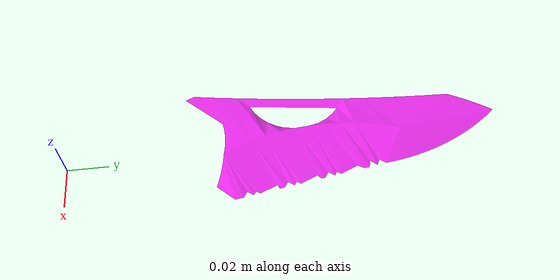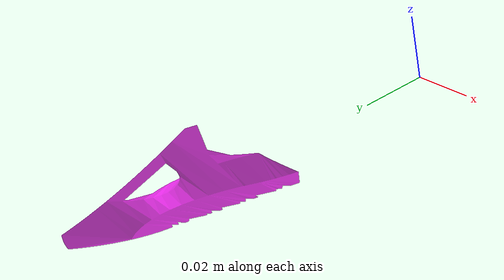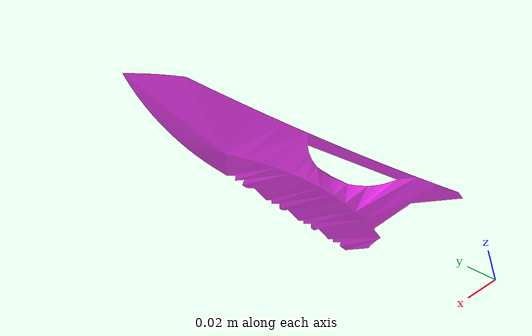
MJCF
<mujoco model="bottom_watertight_tiny">
  <default>
    <default group="2" type="mesh" contype="0" conaffinity="0">
      <geom group="2" type="mesh" contype="0" conaffinity="0"/>
    </default>
    <default group="3" type="mesh">
      <geom group="3" type="mesh"/>
    </default>
  </default>
  <asset>
    <mesh file="bottom_watertight_tiny.obj"/>
    <mesh file="bottom_watertight_tiny_collision_0.obj"/>
    <mesh file="bottom_watertight_tiny_collision_1.obj"/>
    <mesh file="bottom_watertight_tiny_collision_2.obj"/>
    <mesh file="bottom_watertight_tiny_collision_3.obj"/>
    <mesh file="bottom_watertight_tiny_collision_4.obj"/>
    <mesh file="bottom_watertight_tiny_collision_5.obj"/>
    <mesh file="bottom_watertight_tiny_collision_6.obj"/>
    <mesh file="bottom_watertight_tiny_collision_7.obj"/>
    <mesh file="bottom_watertight_tiny_collision_8.obj"/>
    <mesh file="bottom_watertight_tiny_collision_9.obj"/>
    <mesh file="bottom_watertight_tiny_collision_10.obj"/>
    <mesh file="bottom_watertight_tiny_collision_11.obj"/>
    <mesh file="bottom_watertight_tiny_collision_12.obj"/>
    <mesh file="bottom_watertight_tiny_collision_13.obj"/>
    <mesh file="bottom_watertight_tiny_collision_14.obj"/>
  </asset>
  <worldbody>
    <body name="bottom_watertight_tiny">
      <freejoint/>
      <geom mesh="bottom_watertight_tiny" group="2" type="mesh" rgba="1 0 1 0.8" contype="0" conaffinity="0"/>
      <geom mesh="bottom_watertight_tiny_collision_0" rgba="0.888437205607165 0.4998191124188115 0.47445755367718423 1" group="3" type="mesh"/>
      <geom mesh="bottom_watertight_tiny_collision_1" rgba="0.8204052623556178 0.18534061359219245 0.2791891320731278 1" group="3" type="mesh"/>
      <geom mesh="bottom_watertight_tiny_collision_2" rgba="0.21842837581634655 0.7998752610483 0.550659319386601 1" group="3" type="mesh"/>
      <geom mesh="bottom_watertight_tiny_collision_3" rgba="0.870415187440498 0.8416797116082836 0.5662949877119079 1" group="3" type="mesh"/>
      <geom mesh="bottom_watertight_tiny_collision_4" rgba="0.7106652178081031 0.3649835526765157 0.44987135212303053 1" group="3" type="mesh"/>
      <geom mesh="bottom_watertight_tiny_collision_5" rgba="0.9634128746920979 0.4306670595336519 0.6101008134685096 1" group="3" type="mesh"/>
      <geom mesh="bottom_watertight_tiny_collision_6" rgba="0.2926633751505745 0.2904356464568534 0.6796285660791822 1" group="3" type="mesh"/>
      <geom mesh="bottom_watertight_tiny_collision_7" rgba="0.35816792947467624 0.697361240582855 0.7236638209362918 1" group="3" type="mesh"/>
      <geom mesh="bottom_watertight_tiny_collision_8" rgba="0.44471745021269793 0.854765820646796 0.9287828024013544 1" group="3" type="mesh"/>
      <geom mesh="bottom_watertight_tiny_collision_9" rgba="0.815612036233734 0.6040933474812059 0.9428607254969288 1" group="3" type="mesh"/>
      <geom mesh="bottom_watertight_tiny_collision_10" rgba="0.7412112666028737 0.8737121649997365 0.7151369891226051 1" group="3" type="mesh"/>
      <geom mesh="bottom_watertight_tiny_collision_11" rgba="0.8896709335001429 0.3900161639941444 0.3959822271019714 1" group="3" type="mesh"/>
      <geom mesh="bottom_watertight_tiny_collision_12" rgba="0.7187432304874753 0.025253933899019088 0.0385900694769159 1" group="3" type="mesh"/>
      <geom mesh="bottom_watertight_tiny_collision_13" rgba="0.3451235663407164 0.9308339148040083 0.5058884070313233 1" group="3" type="mesh"/>
      <geom mesh="bottom_watertight_tiny_collision_14" rgba="0.8224681894174357 0.49179189256382905 0.5150945730724266 1" group="3" type="mesh"/>
    </body>
  </worldbody>
</mujoco>
